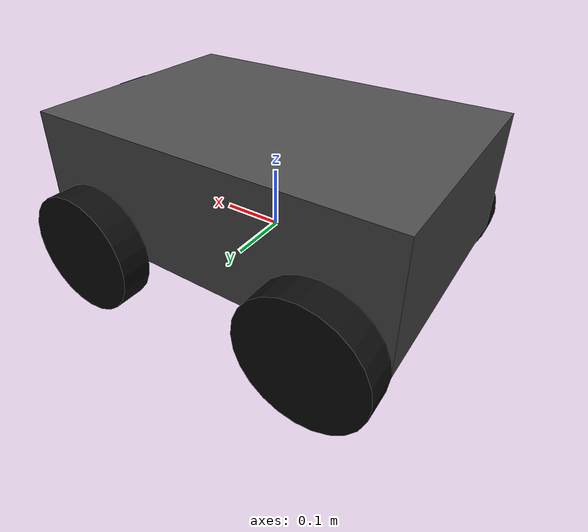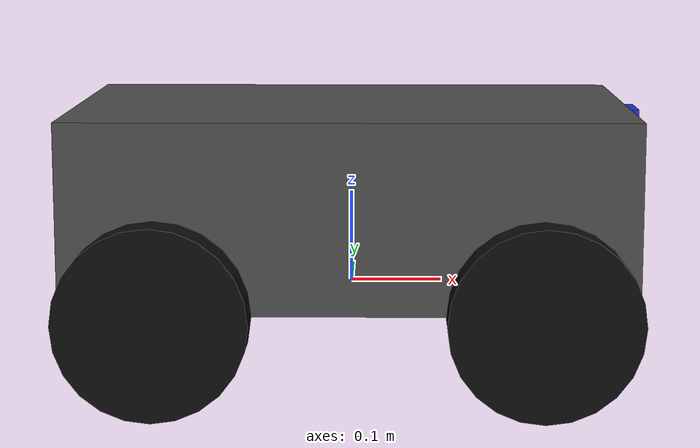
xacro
<?xml version="1.0"?>
<robot name="vp_car" xmlns:xacro="http://www.ros.org/wiki/xacro">

  <!-- Basic dimensions                                              -->
  <xacro:property name="chassis_length" value="0.6"/>
  <xacro:property name="chassis_width"  value="0.4"/>
  <xacro:property name="chassis_height" value="0.2"/>
  <xacro:property name="chassis_mass"   value="20.0"/>

  <xacro:property name="wheel_radius" value="0.1"/>
  <xacro:property name="wheel_width"  value="0.05"/>
  <xacro:property name="wheel_mass"   value="1.0"/>
  <xacro:property name="wheel_separation" value="0.45"/>
  <xacro:property name="wheel_x_offset" value="0.2"/>

  <!-- VisionPilot front camera spec (Media/VisionPilot.png):
       1x front-facing RGB camera, 50 deg horizontal FOV, min 1MP resolution -->
  <xacro:property name="cam_hfov_deg" value="50.0"/>
  <xacro:property name="cam_width"  value="1280"/>
  <xacro:property name="cam_height" value="800"/> <!-- 1280x800 = 1.024 MP -->

  <material name="chassis_grey">
    <color rgba="0.3 0.3 0.3 1.0"/>
  </material>
  <material name="wheel_black">
    <color rgba="0.05 0.05 0.05 1.0"/>
  </material>
  <material name="camera_blue">
    <color rgba="0.1 0.2 0.8 1.0"/>
  </material>

  <!-- Base / chassis                                                -->
  <link name="base_link"/>

  <link name="chassis">
    <visual>
      <geometry>
        <box size="${chassis_length} ${chassis_width} ${chassis_height}"/>
      </geometry>
      <material name="chassis_grey"/>
    </visual>
    <collision>
      <geometry>
        <box size="${chassis_length} ${chassis_width} ${chassis_height}"/>
      </geometry>
    </collision>
    <inertial>
      <mass value="${chassis_mass}"/>
      <inertia ixx="0.4" ixy="0" ixz="0" iyy="0.6" iyz="0" izz="0.6"/>
    </inertial>
  </link>

  <joint name="base_to_chassis" type="fixed">
    <parent link="base_link"/>
    <child link="chassis"/>
    <origin xyz="0 0 ${wheel_radius}" rpy="0 0 0"/>
  </joint>

  <!-- Wheels (differential drive: rear-left / rear-right)           -->
  <!-- Front-left / front-right are passive caster-style wheels      -->
  <xacro:macro name="wheel" params="prefix x_off y_off">
    <link name="${prefix}_wheel">
      <visual>
        <origin xyz="0 0 0" rpy="1.5708 0 0"/>
        <geometry>
          <cylinder radius="${wheel_radius}" length="${wheel_width}"/>
        </geometry>
        <material name="wheel_black"/>
      </visual>
      <collision>
        <origin xyz="0 0 0" rpy="1.5708 0 0"/>
        <geometry>
          <cylinder radius="${wheel_radius}" length="${wheel_width}"/>
        </geometry>
      </collision>
      <inertial>
        <mass value="${wheel_mass}"/>
        <inertia ixx="0.01" ixy="0" ixz="0" iyy="0.01" iyz="0" izz="0.01"/>
      </inertial>
    </link>

    <joint name="${prefix}_wheel_joint" type="continuous">
      <parent link="chassis"/>
      <child link="${prefix}_wheel"/>
      <origin xyz="${x_off} ${y_off} -${wheel_radius}" rpy="0 0 0"/>
      <axis xyz="0 1 0"/>
    </joint>
  </xacro:macro>

  <xacro:wheel prefix="rear_left"   x_off="-${wheel_x_offset}" y_off="${wheel_separation/2}"/>
  <xacro:wheel prefix="rear_right"  x_off="-${wheel_x_offset}" y_off="-${wheel_separation/2}"/>
  <xacro:wheel prefix="front_left"  x_off="${wheel_x_offset}"  y_off="${wheel_separation/2}"/>
  <xacro:wheel prefix="front_right" x_off="${wheel_x_offset}"  y_off="-${wheel_separation/2}"/>

  <!-- Front-facing RGB camera                                       -->
  <link name="front_camera_link">
    <visual>
      <geometry>
        <box size="0.03 0.06 0.03"/>
      </geometry>
      <material name="camera_blue"/>
    </visual>
    <collision>
      <geometry>
        <box size="0.03 0.06 0.03"/>
      </geometry>
    </collision>
    <inertial>
      <mass value="0.05"/>
      <inertia ixx="1e-5" ixy="0" ixz="0" iyy="1e-5" iyz="0" izz="1e-5"/>
    </inertial>
  </link>

  <joint name="front_camera_joint" type="fixed">
    <parent link="chassis"/>
    <child link="front_camera_link"/>
    <!-- Mounted on the front face of the chassis, looking forward -->
    <origin xyz="${chassis_length/2} 0 ${chassis_height/2 - 0.02}" rpy="0 0 0"/>
  </joint>

  <link name="front_camera_optical_link"/>

  <joint name="front_camera_optical_joint" type="fixed">
    <parent link="front_camera_link"/>
    <child link="front_camera_optical_link"/>
    <!-- REP-103 optical frame: +Z forward, +X right, +Y down,
         relative to the body camera frame (+X forward, +Y left, +Z up). -->
    <origin xyz="0 0 0" rpy="-1.5708 0 -1.5708"/>
  </joint>

  <!-- Gazebo (gz-sim) plugins                                       -->
  <gazebo>
    <plugin filename="gz-sim-diff-drive-system" name="gz::sim::systems::DiffDrive">
      <left_joint>rear_left_wheel_joint</left_joint>
      <right_joint>rear_right_wheel_joint</right_joint>
      <wheel_separation>${wheel_separation}</wheel_separation>
      <wheel_radius>${wheel_radius}</wheel_radius>
      <odom_publish_frequency>30</odom_publish_frequency>
      <topic>cmd_vel</topic>
      <odom_topic>odom</odom_topic>
      <frame_id>odom</frame_id>
      <child_frame_id>base_link</child_frame_id>
    </plugin>

    <plugin filename="gz-sim-joint-state-publisher-system" name="gz::sim::systems::JointStatePublisher">
      <topic>joint_states</topic>
    </plugin>
  </gazebo>

  <gazebo reference="front_camera_link">
    <sensor name="front_camera" type="camera">
      <camera>
        <!-- 50 deg HFoV, min 1MP resolution per VisionPilot.png sensing spec -->
        <horizontal_fov>${cam_hfov_deg * pi / 180.0}</horizontal_fov>
        <image>
          <width>${cam_width}</width>
          <height>${cam_height}</height>
          <format>R8G8B8</format>
        </image>
        <clip>
          <near>0.05</near>
          <far>300</far>
        </clip>
        <optical_frame_id>front_camera_optical_link</optical_frame_id>
        <camera_info_topic>vp_car/front_camera/camera_info</camera_info_topic>
      </camera>
      <always_on>true</always_on>
      <update_rate>30</update_rate>
      <visualize>true</visualize>
      <topic>vp_car/front_camera/image_raw</topic>
    </sensor>
  </gazebo>

</robot>
